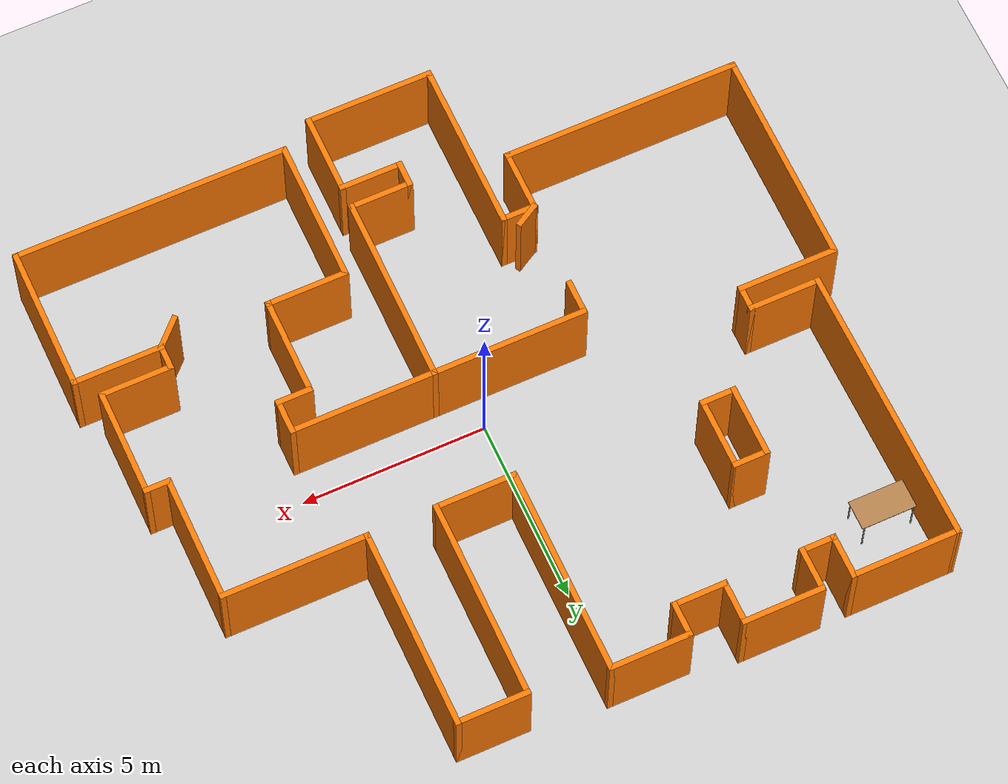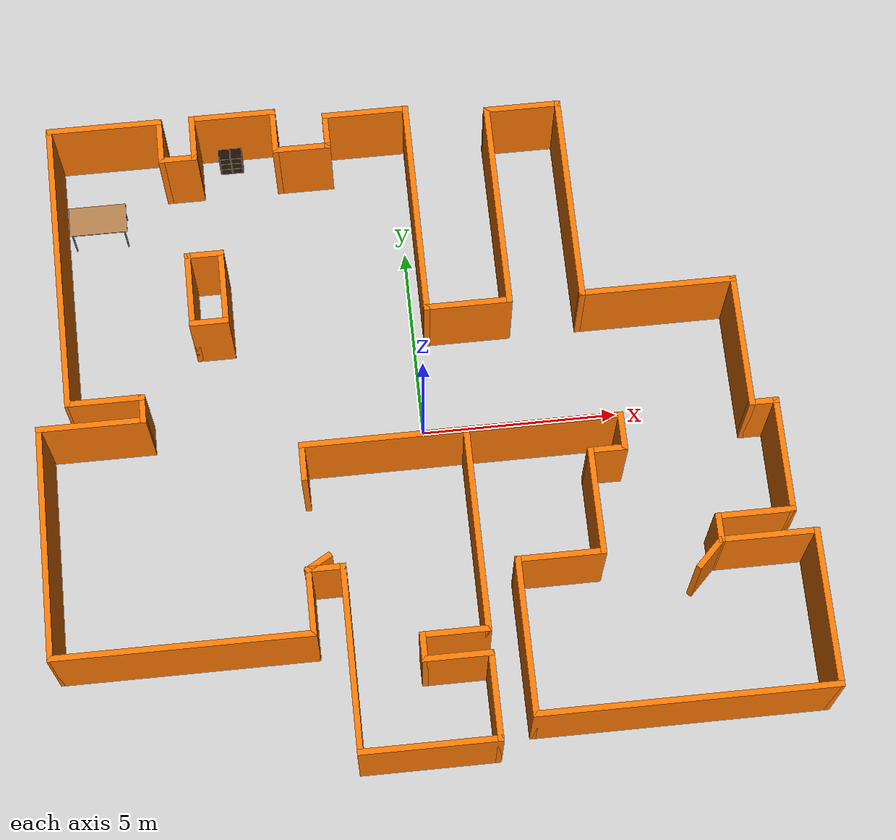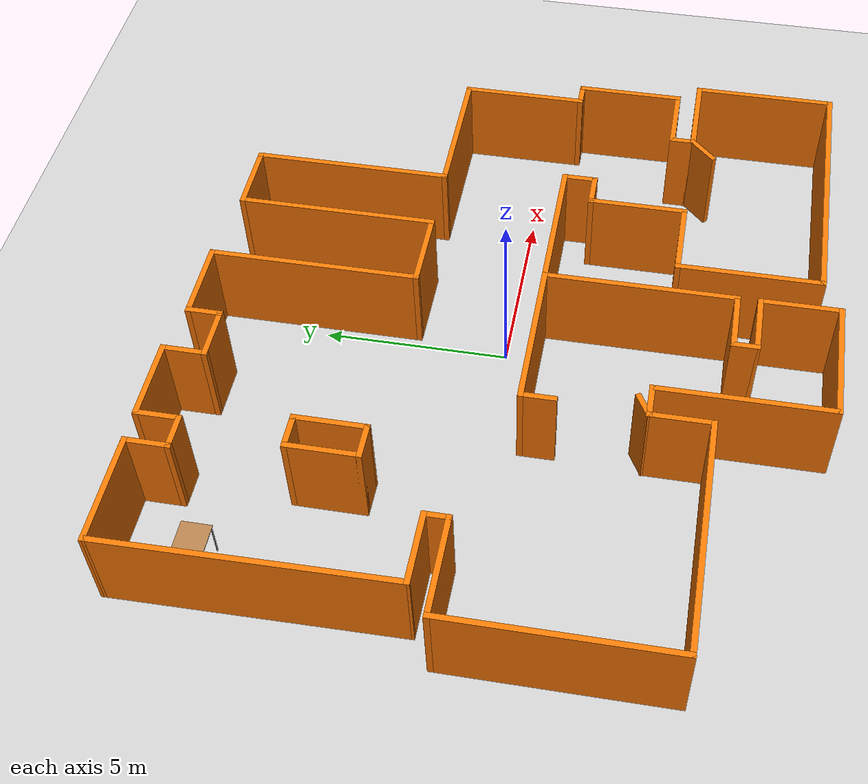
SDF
<sdf version="1.6">
 <world name="default">
  <model name="ground_plane">
   <static>1</static>
   <link name="link">
    <collision name="collision">
     <geometry><plane><normal>0 0 1</normal><size>100 100</size></plane></geometry>
     <surface>
      <contact><collide_bitmask>65535</collide_bitmask></contact>
      <friction><ode><mu>100</mu><mu2>50</mu2></ode></friction>
     </surface>
    </collision>
    <visual name="visual">
     <cast_shadows>0</cast_shadows>
     <geometry><plane><normal>0 0 1</normal><size>100 100</size></plane></geometry>
     <material>
      <script><uri>file://media/materials/scripts/gazebo.material</uri><name>Gazebo/Grey</name></script>
     </material>
    </visual>
   </link>
  </model>
  <model name="map_114">
   <pose>-0.172788 -0.179097 0 0 -0 0</pose>
   <link name="Wall_13">
    <collision name="Wall_13_Collision">
     <geometry><box><size>2 0.15 2.5</size></box></geometry>
     <pose>0 0 1.25 0 -0 0</pose>
    </collision>
    <visual name="Wall_13_Visual">
     <pose>0 0 1.25 0 -0 0</pose>
     <geometry><box><size>2 0.15 2.5</size></box></geometry>
     <material>
      <script><uri>file://media/materials/scripts/gazebo.material</uri><name>Gazebo/Grey</name></script>
      <ambient>0.996078 0.47451 0.0196078 1</ambient>
     </material>
     <meta><layer>0</layer></meta>
    </visual>
    <pose>-7.725 0.949507 0 0 -0 0</pose>
   </link>
   <link name="Wall_14">
    <collision name="Wall_14_Collision">
     <geometry><box><size>0.75 0.15 2.5</size></box></geometry>
     <pose>0 0 1.25 0 -0 0</pose>
    </collision>
    <visual name="Wall_14_Visual">
     <pose>0 0 1.25 0 -0 0</pose>
     <geometry><box><size>0.75 0.15 2.5</size></box></geometry>
     <material>
      <script><uri>file://media/materials/scripts/gazebo.material</uri><name>Gazebo/Grey</name></script>
      <ambient>0.996078 0.47451 0.0196078 1</ambient>
     </material>
     <meta><layer>0</layer></meta>
    </visual>
    <pose>-6.8 0.649507 0 0 -0 -1.5708</pose>
   </link>
   <link name="Wall_15">
    <collision name="Wall_15_Collision">
     <geometry><box><size>2.75 0.15 2.5</size></box></geometry>
     <pose>0 0 1.25 0 -0 0</pose>
    </collision>
    <visual name="Wall_15_Visual">
     <pose>0 0 1.25 0 -0 0</pose>
     <geometry><box><size>2.75 0.15 2.5</size></box></geometry>
     <material>
      <script><uri>file://media/materials/scripts/gazebo.material</uri><name>Gazebo/Grey</name></script>
      <ambient>0.996078 0.47451 0.0196078 1</ambient>
     </material>
     <meta><layer>0</layer></meta>
    </visual>
    <pose>-8.1 0.349507 0 0 -0 3.14159</pose>
   </link>
   <link name="Wall_16">
    <collision name="Wall_16_Collision">
     <geometry><box><size>6 0.15 2.5</size></box></geometry>
     <pose>0 0 1.25 0 -0 0</pose>
    </collision>
    <visual name="Wall_16_Visual">
     <pose>0 0 1.25 0 -0 0</pose>
     <geometry><box><size>6 0.15 2.5</size></box></geometry>
     <material>
      <script><uri>file://media/materials/scripts/gazebo.material</uri><name>Gazebo/Grey</name></script>
      <ambient>0.996078 0.47451 0.0196078 1</ambient>
     </material>
     <meta><layer>0</layer></meta>
    </visual>
    <pose>-9.4 -2.57549 0 0 -0 -1.5708</pose>
   </link>
   <link name="Wall_17">
    <collision name="Wall_17_Collision">
     <geometry><box><size>6.5 0.15 2.5</size></box></geometry>
     <pose>0 0 1.25 0 -0 0</pose>
    </collision>
    <visual name="Wall_17_Visual">
     <pose>0 0 1.25 0 -0 0</pose>
     <geometry><box><size>6.5 0.15 2.5</size></box></geometry>
     <material>
      <script><uri>file://media/materials/scripts/gazebo.material</uri><name>Gazebo/Grey</name></script>
      <ambient>0.996078 0.47451 0.0196078 1</ambient>
     </material>
     <meta><layer>0</layer></meta>
    </visual>
    <pose>-6.225 -5.50049 0 0 -0 0</pose>
   </link>
   <link name="Wall_21">
    <collision name="Wall_21_Collision">
     <geometry><box><size>3.5 0.15 2.5</size></box></geometry>
     <pose>0 0 1.25 0 -0 0</pose>
    </collision>
    <visual name="Wall_21_Visual">
     <pose>0 0 1.25 0 -0 0</pose>
     <geometry><box><size>3.5 0.15 2.5</size></box></geometry>
     <material>
      <script><uri>file://media/materials/scripts/gazebo.material</uri><name>Gazebo/Grey</name></script>
      <ambient>0.996078 0.47451 0.0196078 1</ambient>
     </material>
     <meta><layer>0</layer></meta>
    </visual>
    <pose>-0.525 -8.50049 0 0 -0 0</pose>
   </link>
   <link name="Wall_22">
    <collision name="Wall_22_Collision">
     <geometry><box><size>2.25 0.15 2.5</size></box></geometry>
     <pose>0 0 1.25 0 -0 0</pose>
    </collision>
    <visual name="Wall_22_Visual">
     <pose>0 0 1.25 0 -0 0</pose>
     <geometry><box><size>2.25 0.15 2.5</size></box></geometry>
     <material>
      <script><uri>file://media/materials/scripts/gazebo.material</uri><name>Gazebo/Grey</name></script>
      <ambient>0.996078 0.47451 0.0196078 1</ambient>
     </material>
     <meta><layer>0</layer></meta>
    </visual>
    <pose>1.15 -7.45049 0 0 -0 1.5708</pose>
   </link>
   <link name="Wall_23">
    <collision name="Wall_23_Collision">
     <geometry><box><size>1.75 0.15 2.5</size></box></geometry>
     <pose>0 0 1.25 0 -0 0</pose>
    </collision>
    <visual name="Wall_23_Visual">
     <pose>0 0 1.25 0 -0 0</pose>
     <geometry><box><size>1.75 0.15 2.5</size></box></geometry>
     <material>
      <script><uri>file://media/materials/scripts/gazebo.material</uri><name>Gazebo/Grey</name></script>
      <ambient>0.996078 0.47451 0.0196078 1</ambient>
     </material>
     <meta><layer>0</layer></meta>
    </visual>
    <pose>0.35 -6.40049 0 0 -0 3.14159</pose>
   </link>
   <link name="Wall_24">
    <collision name="Wall_24_Collision">
     <geometry><box><size>0.75 0.15 2.5</size></box></geometry>
     <pose>0 0 1.25 0 -0 0</pose>
    </collision>
    <visual name="Wall_24_Visual">
     <pose>0 0 1.25 0 -0 0</pose>
     <geometry><box><size>0.75 0.15 2.5</size></box></geometry>
     <material>
      <script><uri>file://media/materials/scripts/gazebo.material</uri><name>Gazebo/Grey</name></script>
      <ambient>0.996078 0.47451 0.0196078 1</ambient>
     </material>
     <meta><layer>0</layer></meta>
    </visual>
    <pose>-0.45 -6.10049 0 0 -0 1.5708</pose>
   </link>
   <link name="Wall_25">
    <collision name="Wall_25_Collision">
     <geometry><box><size>1.75 0.15 2.5</size></box></geometry>
     <pose>0 0 1.25 0 -0 0</pose>
    </collision>
    <visual name="Wall_25_Visual">
     <pose>0 0 1.25 0 -0 0</pose>
     <geometry><box><size>1.75 0.15 2.5</size></box></geometry>
     <material>
      <script><uri>file://media/materials/scripts/gazebo.material</uri><name>Gazebo/Grey</name></script>
      <ambient>0.996078 0.47451 0.0196078 1</ambient>
     </material>
     <meta><layer>0</layer></meta>
    </visual>
    <pose>0.35 -5.80049 0 0 -0 0</pose>
   </link>
   <link name="Wall_26">
    <collision name="Wall_26_Collision">
     <geometry><box><size>5.25 0.15 2.5</size></box></geometry>
     <pose>0 0 1.25 0 -0 0</pose>
    </collision>
    <visual name="Wall_26_Visual">
     <pose>0 0 1.25 0 -0 0</pose>
     <geometry><box><size>5.25 0.15 2.5</size></box></geometry>
     <material>
      <script><uri>file://media/materials/scripts/gazebo.material</uri><name>Gazebo/Grey</name></script>
      <ambient>0.996078 0.47451 0.0196078 1</ambient>
     </material>
     <meta><layer>0</layer></meta>
    </visual>
    <pose>1.15 -3.25049 0 0 -0 1.5708</pose>
   </link>
   <link name="Wall_27">
    <collision name="Wall_27_Collision">
     <geometry><box><size>4.25 0.15 2.5</size></box></geometry>
     <pose>0 0 1.25 0 -0 0</pose>
    </collision>
    <visual name="Wall_27_Visual">
     <pose>0 0 1.25 0 -0 0</pose>
     <geometry><box><size>4.25 0.15 2.5</size></box></geometry>
     <material>
      <script><uri>file://media/materials/scripts/gazebo.material</uri><name>Gazebo/Grey</name></script>
      <ambient>0.996078 0.47451 0.0196078 1</ambient>
     </material>
     <meta><layer>0</layer></meta>
    </visual>
    <pose>-0.9 -0.700493 0 0 -0 3.14159</pose>
   </link>
   <link name="Wall_28">
    <collision name="Wall_28_Collision">
     <geometry><box><size>1 0.15 2.5</size></box></geometry>
     <pose>0 0 1.25 0 -0 0</pose>
    </collision>
    <visual name="Wall_28_Visual">
     <pose>0 0 1.25 0 -0 0</pose>
     <geometry><box><size>1 0.15 2.5</size></box></geometry>
     <material>
      <script><uri>file://media/materials/scripts/gazebo.material</uri><name>Gazebo/Grey</name></script>
      <ambient>0.996078 0.47451 0.0196078 1</ambient>
     </material>
     <meta><layer>0</layer></meta>
    </visual>
    <pose>-2.95 -1.12549 0 0 -0 -1.5708</pose>
   </link>
   <link name="Wall_30">
    <collision name="Wall_30_Collision">
     <geometry><box><size>1.75 0.15 2.5</size></box></geometry>
     <pose>0 0 1.25 0 -0 0</pose>
    </collision>
    <visual name="Wall_30_Visual">
     <pose>0 0 1.25 0 -0 0</pose>
     <geometry><box><size>1.75 0.15 2.5</size></box></geometry>
     <material>
      <script><uri>file://media/materials/scripts/gazebo.material</uri><name>Gazebo/Grey</name></script>
      <ambient>0.996078 0.47451 0.0196078 1</ambient>
     </material>
     <meta><layer>0</layer></meta>
    </visual>
    <pose>-3.05 -4.70049 0 0 -0 1.5708</pose>
   </link>
   <link name="Wall_31">
    <collision name="Wall_31_Collision">
     <geometry><box><size>1 0.15 2.5</size></box></geometry>
     <pose>0 0 1.25 0 -0 0</pose>
    </collision>
    <visual name="Wall_31_Visual">
     <pose>0 0 1.25 0 -0 0</pose>
     <geometry><box><size>1 0.15 2.5</size></box></geometry>
     <material>
      <script><uri>file://media/materials/scripts/gazebo.material</uri><name>Gazebo/Grey</name></script>
      <ambient>0.996078 0.47451 0.0196078 1</ambient>
     </material>
     <meta><layer>0</layer></meta>
    </visual>
    <pose>-2.625 -3.90049 0 0 -0 0</pose>
   </link>
   <link name="Wall_33">
    <collision name="Wall_33_Collision">
     <geometry><box><size>4.75 0.15 2.5</size></box></geometry>
     <pose>0 0 1.25 0 -0 0</pose>
    </collision>
    <visual name="Wall_33_Visual">
     <pose>0 0 1.25 0 -0 0</pose>
     <geometry><box><size>4.75 0.15 2.5</size></box></geometry>
     <material>
      <script><uri>file://media/materials/scripts/gazebo.material</uri><name>Gazebo/Grey</name></script>
      <ambient>0.996078 0.47451 0.0196078 1</ambient>
     </material>
     <meta><layer>0</layer></meta>
    </visual>
    <pose>-2.2 -6.20049 0 0 -0 -1.5708</pose>
   </link>
   <link name="Wall_39">
    <collision name="Wall_39_Collision">
     <geometry><box><size>4 0.15 2.5</size></box></geometry>
     <pose>0 0 1.25 0 -0 0</pose>
    </collision>
    <visual name="Wall_39_Visual">
     <pose>0 0 1.25 0 -0 0</pose>
     <geometry><box><size>4 0.15 2.5</size></box></geometry>
     <material>
      <script><uri>file://media/materials/scripts/gazebo.material</uri><name>Gazebo/Grey</name></script>
      <ambient>0.996078 0.47451 0.0196078 1</ambient>
     </material>
     <meta><layer>0</layer></meta>
    </visual>
    <pose>3.075 -0.700493 0 0 -0 0</pose>
   </link>
   <link name="Wall_40">
    <collision name="Wall_40_Collision">
     <geometry><box><size>1 0.15 2.5</size></box></geometry>
     <pose>0 0 1.25 0 -0 0</pose>
    </collision>
    <visual name="Wall_40_Visual">
     <pose>0 0 1.25 0 -0 0</pose>
     <geometry><box><size>1 0.15 2.5</size></box></geometry>
     <material>
      <script><uri>file://media/materials/scripts/gazebo.material</uri><name>Gazebo/Grey</name></script>
      <ambient>0.996078 0.47451 0.0196078 1</ambient>
     </material>
     <meta><layer>0</layer></meta>
    </visual>
    <pose>5 -1.12549 0 0 -0 -1.5708</pose>
   </link>
   <link name="Wall_41">
    <collision name="Wall_41_Collision">
     <geometry><box><size>1 0.15 2.5</size></box></geometry>
     <pose>0 0 1.25 0 -0 0</pose>
    </collision>
    <visual name="Wall_41_Visual">
     <pose>0 0 1.25 0 -0 0</pose>
     <geometry><box><size>1 0.15 2.5</size></box></geometry>
     <material>
      <script><uri>file://media/materials/scripts/gazebo.material</uri><name>Gazebo/Grey</name></script>
      <ambient>0.996078 0.47451 0.0196078 1</ambient>
     </material>
     <meta><layer>0</layer></meta>
    </visual>
    <pose>4.575 -1.55049 0 0 -0 3.14159</pose>
   </link>
   <link name="Wall_42">
    <collision name="Wall_42_Collision">
     <geometry><box><size>2.75 0.15 2.5</size></box></geometry>
     <pose>0 0 1.25 0 -0 0</pose>
    </collision>
    <visual name="Wall_42_Visual">
     <pose>0 0 1.25 0 -0 0</pose>
     <geometry><box><size>2.75 0.15 2.5</size></box></geometry>
     <material>
      <script><uri>file://media/materials/scripts/gazebo.material</uri><name>Gazebo/Grey</name></script>
      <ambient>0.996078 0.47451 0.0196078 1</ambient>
     </material>
     <meta><layer>0</layer></meta>
    </visual>
    <pose>4.15 -2.85049 0 0 -0 -1.5708</pose>
   </link>
   <link name="Wall_43">
    <collision name="Wall_43_Collision">
     <geometry><box><size>2.25 0.15 2.5</size></box></geometry>
     <pose>0 0 1.25 0 -0 0</pose>
    </collision>
    <visual name="Wall_43_Visual">
     <pose>0 0 1.25 0 -0 0</pose>
     <geometry><box><size>2.25 0.15 2.5</size></box></geometry>
     <material>
      <script><uri>file://media/materials/scripts/gazebo.material</uri><name>Gazebo/Grey</name></script>
      <ambient>0.996078 0.47451 0.0196078 1</ambient>
     </material>
     <meta><layer>0</layer></meta>
    </visual>
    <pose>3.1 -4.15049 0 0 -0 3.14159</pose>
   </link>
   <link name="Wall_44">
    <collision name="Wall_44_Collision">
     <geometry><box><size>4 0.15 2.5</size></box></geometry>
     <pose>0 0 1.25 0 -0 0</pose>
    </collision>
    <visual name="Wall_44_Visual">
     <pose>0 0 1.25 0 -0 0</pose>
     <geometry><box><size>4 0.15 2.5</size></box></geometry>
     <material>
      <script><uri>file://media/materials/scripts/gazebo.material</uri><name>Gazebo/Grey</name></script>
      <ambient>0.996078 0.47451 0.0196078 1</ambient>
     </material>
     <meta><layer>0</layer></meta>
    </visual>
    <pose>2.05 -6.07549 0 0 -0 -1.5708</pose>
   </link>
   <link name="Wall_45">
    <collision name="Wall_45_Collision">
     <geometry><box><size>7.5 0.15 2.5</size></box></geometry>
     <pose>0 0 1.25 0 -0 0</pose>
    </collision>
    <visual name="Wall_45_Visual">
     <pose>0 0 1.25 0 -0 0</pose>
     <geometry><box><size>7.5 0.15 2.5</size></box></geometry>
     <material>
      <script><uri>file://media/materials/scripts/gazebo.material</uri><name>Gazebo/Grey</name></script>
      <ambient>0.996078 0.47451 0.0196078 1</ambient>
     </material>
     <meta><layer>0</layer></meta>
    </visual>
    <pose>5.725 -8.00049 0 0 -0 0</pose>
   </link>
   <link name="Wall_46">
    <collision name="Wall_46_Collision">
     <geometry><box><size>4 0.15 2.5</size></box></geometry>
     <pose>0 0 1.25 0 -0 0</pose>
    </collision>
    <visual name="Wall_46_Visual">
     <pose>0 0 1.25 0 -0 0</pose>
     <geometry><box><size>4 0.15 2.5</size></box></geometry>
     <material>
      <script><uri>file://media/materials/scripts/gazebo.material</uri><name>Gazebo/Grey</name></script>
      <ambient>0.996078 0.47451 0.0196078 1</ambient>
     </material>
     <meta><layer>0</layer></meta>
    </visual>
    <pose>9.4 -6.07549 0 0 -0 1.5708</pose>
   </link>
   <link name="Wall_47">
    <collision name="Wall_47_Collision">
     <geometry><box><size>2.5 0.15 2.5</size></box></geometry>
     <pose>0 0 1.25 0 -0 0</pose>
    </collision>
    <visual name="Wall_47_Visual">
     <pose>0 0 1.25 0 -0 0</pose>
     <geometry><box><size>2.5 0.15 2.5</size></box></geometry>
     <material>
      <script><uri>file://media/materials/scripts/gazebo.material</uri><name>Gazebo/Grey</name></script>
      <ambient>0.996078 0.47451 0.0196078 1</ambient>
     </material>
     <meta><layer>0</layer></meta>
    </visual>
    <pose>8.225 -4.15049 0 0 -0 3.14159</pose>
   </link>
   <link name="Wall_48">
    <collision name="Wall_48_Collision">
     <geometry><box><size>0.75 0.15 2.5</size></box></geometry>
     <pose>0 0 1.25 0 -0 0</pose>
    </collision>
    <visual name="Wall_48_Visual">
     <pose>0 0 1.25 0 -0 0</pose>
     <geometry><box><size>0.75 0.15 2.5</size></box></geometry>
     <material>
      <script><uri>file://media/materials/scripts/gazebo.material</uri><name>Gazebo/Grey</name></script>
      <ambient>0.996078 0.47451 0.0196078 1</ambient>
     </material>
     <meta><layer>0</layer></meta>
    </visual>
    <pose>7.05 -3.85049 0 0 -0 1.5708</pose>
   </link>
   <link name="Wall_49">
    <collision name="Wall_49_Collision">
     <geometry><box><size>2 0.15 2.5</size></box></geometry>
     <pose>0 0 1.25 0 -0 0</pose>
    </collision>
    <visual name="Wall_49_Visual">
     <pose>0 0 1.25 0 -0 0</pose>
     <geometry><box><size>2 0.15 2.5</size></box></geometry>
     <material>
      <script><uri>file://media/materials/scripts/gazebo.material</uri><name>Gazebo/Grey</name></script>
      <ambient>0.996078 0.47451 0.0196078 1</ambient>
     </material>
     <meta><layer>0</layer></meta>
    </visual>
    <pose>7.975 -3.55049 0 0 -0 0</pose>
   </link>
   <link name="Wall_50">
    <collision name="Wall_50_Collision">
     <geometry><box><size>3 0.15 2.5</size></box></geometry>
     <pose>0 0 1.25 0 -0 0</pose>
    </collision>
    <visual name="Wall_50_Visual">
     <pose>0 0 1.25 0 -0 0</pose>
     <geometry><box><size>3 0.15 2.5</size></box></geometry>
     <material>
      <script><uri>file://media/materials/scripts/gazebo.material</uri><name>Gazebo/Grey</name></script>
      <ambient>0.996078 0.47451 0.0196078 1</ambient>
     </material>
     <meta><layer>0</layer></meta>
    </visual>
    <pose>8.9 -2.12549 0 0 -0 1.5708</pose>
   </link>
   <link name="Wall_51">
    <collision name="Wall_51_Collision">
     <geometry><box><size>0.75 0.15 2.5</size></box></geometry>
     <pose>0 0 1.25 0 -0 0</pose>
    </collision>
    <visual name="Wall_51_Visual">
     <pose>0 0 1.25 0 -0 0</pose>
     <geometry><box><size>0.75 0.15 2.5</size></box></geometry>
     <material>
      <script><uri>file://media/materials/scripts/gazebo.material</uri><name>Gazebo/Grey</name></script>
      <ambient>0.996078 0.47451 0.0196078 1</ambient>
     </material>
     <meta><layer>0</layer></meta>
    </visual>
    <pose>8.6 -0.700493 0 0 -0 3.14159</pose>
   </link>
   <link name="Wall_57">
    <collision name="Wall_57_Collision">
     <geometry><box><size>3.5 0.15 2.5</size></box></geometry>
     <pose>0 0 1.25 0 -0 0</pose>
    </collision>
    <visual name="Wall_57_Visual">
     <pose>0 0 1.25 0 -0 0</pose>
     <geometry><box><size>3.5 0.15 2.5</size></box></geometry>
     <material>
      <script><uri>file://media/materials/scripts/gazebo.material</uri><name>Gazebo/Grey</name></script>
      <ambient>0.996078 0.47451 0.0196078 1</ambient>
     </material>
     <meta><layer>0</layer></meta>
    </visual>
    <pose>8.3 0.974507 0 0 -0 1.5708</pose>
   </link>
   <link name="Wall_58">
    <collision name="Wall_58_Collision">
     <geometry><box><size>4 0.15 2.5</size></box></geometry>
     <pose>0 0 1.25 0 -0 0</pose>
    </collision>
    <visual name="Wall_58_Visual">
     <pose>0 0 1.25 0 -0 0</pose>
     <geometry><box><size>4 0.15 2.5</size></box></geometry>
     <material>
      <script><uri>file://media/materials/scripts/gazebo.material</uri><name>Gazebo/Grey</name></script>
      <ambient>0.996078 0.47451 0.0196078 1</ambient>
     </material>
     <meta><layer>0</layer></meta>
    </visual>
    <pose>6.375 2.64951 0 0 -0 3.14159</pose>
   </link>
   <link name="Wall_59">
    <collision name="Wall_59_Collision">
     <geometry><box><size>5.5 0.15 2.5</size></box></geometry>
     <pose>0 0 1.25 0 -0 0</pose>
    </collision>
    <visual name="Wall_59_Visual">
     <pose>0 0 1.25 0 -0 0</pose>
     <geometry><box><size>5.5 0.15 2.5</size></box></geometry>
     <material>
      <script><uri>file://media/materials/scripts/gazebo.material</uri><name>Gazebo/Grey</name></script>
      <ambient>0.996078 0.47451 0.0196078 1</ambient>
     </material>
     <meta><layer>0</layer></meta>
    </visual>
    <pose>4.45 5.32451 0 0 -0 1.5708</pose>
   </link>
   <link name="Wall_60">
    <collision name="Wall_60_Collision">
     <geometry><box><size>2 0.15 2.5</size></box></geometry>
     <pose>0 0 1.25 0 -0 0</pose>
    </collision>
    <visual name="Wall_60_Visual">
     <pose>0 0 1.25 0 -0 0</pose>
     <geometry><box><size>2 0.15 2.5</size></box></geometry>
     <material>
      <script><uri>file://media/materials/scripts/gazebo.material</uri><name>Gazebo/Grey</name></script>
      <ambient>0.996078 0.47451 0.0196078 1</ambient>
     </material>
     <meta><layer>0</layer></meta>
    </visual>
    <pose>3.525 7.99951 0 0 -0 3.14159</pose>
   </link>
   <link name="Wall_61">
    <collision name="Wall_61_Collision">
     <geometry><box><size>5.5 0.15 2.5</size></box></geometry>
     <pose>0 0 1.25 0 -0 0</pose>
    </collision>
    <visual name="Wall_61_Visual">
     <pose>0 0 1.25 0 -0 0</pose>
     <geometry><box><size>5.5 0.15 2.5</size></box></geometry>
     <material>
      <script><uri>file://media/materials/scripts/gazebo.material</uri><name>Gazebo/Grey</name></script>
      <ambient>0.996078 0.47451 0.0196078 1</ambient>
     </material>
     <meta><layer>0</layer></meta>
    </visual>
    <pose>2.6 5.32451 0 0 -0 -1.5708</pose>
   </link>
   <link name="Wall_62">
    <collision name="Wall_62_Collision">
     <geometry><box><size>2.25 0.15 2.5</size></box></geometry>
     <pose>0 0 1.25 0 -0 0</pose>
    </collision>
    <visual name="Wall_62_Visual">
     <pose>0 0 1.25 0 -0 0</pose>
     <geometry><box><size>2.25 0.15 2.5</size></box></geometry>
     <material>
      <script><uri>file://media/materials/scripts/gazebo.material</uri><name>Gazebo/Grey</name></script>
      <ambient>0.996078 0.47451 0.0196078 1</ambient>
     </material>
     <meta><layer>0</layer></meta>
    </visual>
    <pose>1.55 2.64951 0 0 -0 3.14159</pose>
   </link>
   <link name="Wall_63">
    <collision name="Wall_63_Collision">
     <geometry><box><size>5.75 0.15 2.5</size></box></geometry>
     <pose>0 0 1.25 0 -0 0</pose>
    </collision>
    <visual name="Wall_63_Visual">
     <pose>0 0 1.25 0 -0 0</pose>
     <geometry><box><size>5.75 0.15 2.5</size></box></geometry>
     <material>
      <script><uri>file://media/materials/scripts/gazebo.material</uri><name>Gazebo/Grey</name></script>
      <ambient>0.996078 0.47451 0.0196078 1</ambient>
     </material>
     <meta><layer>0</layer></meta>
    </visual>
    <pose>0.5 5.44951 0 0 -0 1.5708</pose>
   </link>
   <link name="Wall_64">
    <collision name="Wall_64_Collision">
     <geometry><box><size>2.25 0.15 2.5</size></box></geometry>
     <pose>0 0 1.25 0 -0 0</pose>
    </collision>
    <visual name="Wall_64_Visual">
     <pose>0 0 1.25 0 -0 0</pose>
     <geometry><box><size>2.25 0.15 2.5</size></box></geometry>
     <material>
      <script><uri>file://media/materials/scripts/gazebo.material</uri><name>Gazebo/Grey</name></script>
      <ambient>0.996078 0.47451 0.0196078 1</ambient>
     </material>
     <meta><layer>0</layer></meta>
    </visual>
    <pose>-0.55 8.24951 0 0 -0 3.14159</pose>
   </link>
   <link name="Wall_65">
    <collision name="Wall_65_Collision">
     <geometry><box><size>1 0.15 2.5</size></box></geometry>
     <pose>0 0 1.25 0 -0 0</pose>
    </collision>
    <visual name="Wall_65_Visual">
     <pose>0 0 1.25 0 -0 0</pose>
     <geometry><box><size>1 0.15 2.5</size></box></geometry>
     <material>
      <script><uri>file://media/materials/scripts/gazebo.material</uri><name>Gazebo/Grey</name></script>
      <ambient>0.996078 0.47451 0.0196078 1</ambient>
     </material>
     <meta><layer>0</layer></meta>
    </visual>
    <pose>-1.6 7.82451 0 0 -0 -1.5708</pose>
   </link>
   <link name="Wall_66">
    <collision name="Wall_66_Collision">
     <geometry><box><size>1.5 0.15 2.5</size></box></geometry>
     <pose>0 0 1.25 0 -0 0</pose>
    </collision>
    <visual name="Wall_66_Visual">
     <pose>0 0 1.25 0 -0 0</pose>
     <geometry><box><size>1.5 0.15 2.5</size></box></geometry>
     <material>
      <script><uri>file://media/materials/scripts/gazebo.material</uri><name>Gazebo/Grey</name></script>
      <ambient>0.996078 0.47451 0.0196078 1</ambient>
     </material>
     <meta><layer>0</layer></meta>
    </visual>
    <pose>-2.275 7.39951 0 0 -0 3.14159</pose>
   </link>
   <link name="Wall_67">
    <collision name="Wall_67_Collision">
     <geometry><box><size>1.25 0.15 2.5</size></box></geometry>
     <pose>0 0 1.25 0 -0 0</pose>
    </collision>
    <visual name="Wall_67_Visual">
     <pose>0 0 1.25 0 -0 0</pose>
     <geometry><box><size>1.25 0.15 2.5</size></box></geometry>
     <material>
      <script><uri>file://media/materials/scripts/gazebo.material</uri><name>Gazebo/Grey</name></script>
      <ambient>0.996078 0.47451 0.0196078 1</ambient>
     </material>
     <meta><layer>0</layer></meta>
    </visual>
    <pose>-2.95 7.94951 0 0 -0 1.5708</pose>
   </link>
   <link name="Wall_68">
    <collision name="Wall_68_Collision">
     <geometry><box><size>2.25 0.15 2.5</size></box></geometry>
     <pose>0 0 1.25 0 -0 0</pose>
    </collision>
    <visual name="Wall_68_Visual">
     <pose>0 0 1.25 0 -0 0</pose>
     <geometry><box><size>2.25 0.15 2.5</size></box></geometry>
     <material>
      <script><uri>file://media/materials/scripts/gazebo.material</uri><name>Gazebo/Grey</name></script>
      <ambient>0.996078 0.47451 0.0196078 1</ambient>
     </material>
     <meta><layer>0</layer></meta>
    </visual>
    <pose>-4 8.49951 0 0 -0 3.14159</pose>
   </link>
   <link name="Wall_69">
    <collision name="Wall_69_Collision">
     <geometry><box><size>1.25 0.15 2.5</size></box></geometry>
     <pose>0 0 1.25 0 -0 0</pose>
    </collision>
    <visual name="Wall_69_Visual">
     <pose>0 0 1.25 0 -0 0</pose>
     <geometry><box><size>1.25 0.15 2.5</size></box></geometry>
     <material>
      <script><uri>file://media/materials/scripts/gazebo.material</uri><name>Gazebo/Grey</name></script>
      <ambient>0.996078 0.47451 0.0196078 1</ambient>
     </material>
     <meta><layer>0</layer></meta>
    </visual>
    <pose>-5.05 7.94951 0 0 -0 -1.5708</pose>
   </link>
   <link name="Wall_70">
    <collision name="Wall_70_Collision">
     <geometry><box><size>1 0.15 2.5</size></box></geometry>
     <pose>0 0 1.25 0 -0 0</pose>
    </collision>
    <visual name="Wall_70_Visual">
     <pose>0 0 1.25 0 -0 0</pose>
     <geometry><box><size>1 0.15 2.5</size></box></geometry>
     <material>
      <script><uri>file://media/materials/scripts/gazebo.material</uri><name>Gazebo/Grey</name></script>
      <ambient>0.996078 0.47451 0.0196078 1</ambient>
     </material>
     <meta><layer>0</layer></meta>
    </visual>
    <pose>-5.475 7.39951 0 0 -0 3.14159</pose>
   </link>
   <link name="Wall_71">
    <collision name="Wall_71_Collision">
     <geometry><box><size>1.25 0.15 2.5</size></box></geometry>
     <pose>0 0 1.25 0 -0 0</pose>
    </collision>
    <visual name="Wall_71_Visual">
     <pose>0 0 1.25 0 -0 0</pose>
     <geometry><box><size>1.25 0.15 2.5</size></box></geometry>
     <material>
      <script><uri>file://media/materials/scripts/gazebo.material</uri><name>Gazebo/Grey</name></script>
      <ambient>0.996078 0.47451 0.0196078 1</ambient>
     </material>
     <meta><layer>0</layer></meta>
    </visual>
    <pose>-5.9 7.94951 0 0 -0 1.5708</pose>
   </link>
   <link name="Wall_72">
    <collision name="Wall_72_Collision">
     <geometry><box><size>3 0.15 2.5</size></box></geometry>
     <pose>0 0 1.25 0 -0 0</pose>
    </collision>
    <visual name="Wall_72_Visual">
     <pose>0 0 1.25 0 -0 0</pose>
     <geometry><box><size>3 0.15 2.5</size></box></geometry>
     <material>
      <script><uri>file://media/materials/scripts/gazebo.material</uri><name>Gazebo/Grey</name></script>
      <ambient>0.996078 0.47451 0.0196078 1</ambient>
     </material>
     <meta><layer>0</layer></meta>
    </visual>
    <pose>-7.325 8.49951 0 0 -0 3.14159</pose>
   </link>
   <link name="Wall_75">
    <collision name="Wall_75_Collision">
     <geometry><box><size>7.70066 0.15 2.5</size></box></geometry>
     <pose>0 0 1.25 0 -0 0</pose>
    </collision>
    <visual name="Wall_75_Visual">
     <pose>0 0 1.25 0 -0 0</pose>
     <geometry><box><size>7.70066 0.15 2.5</size></box></geometry>
     <material>
      <script><uri>file://media/materials/scripts/gazebo.material</uri><name>Gazebo/Grey</name></script>
      <ambient>0.996078 0.47451 0.0196078 1</ambient>
     </material>
     <meta><layer>0</layer></meta>
    </visual>
    <pose>-8.7 4.72451 0 0 -0 -1.55755</pose>
   </link>
   <link name="Wall_77">
    <collision name="Wall_77_Collision">
     <geometry><box><size>0.75 0.15 2.5</size></box></geometry>
     <pose>0 0 1.25 0 -0 0</pose>
    </collision>
    <visual name="Wall_77_Visual">
     <pose>0 0 1.25 0 -0 0</pose>
     <geometry><box><size>0.75 0.15 2.5</size></box></geometry>
     <material>
      <script><uri>file://media/materials/scripts/gazebo.material</uri><name>Gazebo/Grey</name></script>
      <ambient>0.996078 0.47451 0.0196078 1</ambient>
     </material>
     <meta><layer>0</layer></meta>
    </visual>
    <pose>-2.79019 -3.75049 0 0 -0 0.523599</pose>
   </link>
   <link name="Wall_79">
    <collision name="Wall_79_Collision">
     <geometry><box><size>1 0.15 2.5</size></box></geometry>
     <pose>0 0 1.25 0 -0 0</pose>
    </collision>
    <visual name="Wall_79_Visual">
     <pose>0 0 1.25 0 -0 0</pose>
     <geometry><box><size>1 0.15 2.5</size></box></geometry>
     <material>
      <script><uri>file://media/materials/scripts/gazebo.material</uri><name>Gazebo/Grey</name></script>
      <ambient>0.996078 0.47451 0.0196078 1</ambient>
     </material>
     <meta><layer>0</layer></meta>
    </visual>
    <pose>6.74948 -4.45101 0 0 -0 -2.35619</pose>
   </link>
   <link name="Wall_81">
    <collision name="Wall_81_Collision">
     <geometry><box><size>2 0.15 2.5</size></box></geometry>
     <pose>0 0 1.25 0 -0 0</pose>
    </collision>
    <visual name="Wall_81_Visual">
     <pose>0 0 1.25 0 -0 0</pose>
     <geometry><box><size>2 0.15 2.5</size></box></geometry>
     <material>
      <script><uri>file://media/materials/scripts/gazebo.material</uri><name>Gazebo/Grey</name></script>
      <ambient>0.996078 0.47451 0.0196078 1</ambient>
     </material>
     <meta><layer>0</layer></meta>
    </visual>
    <pose>-5.4155 3.72946 0 0 -0 -1.5708</pose>
   </link>
   <link name="Wall_82">
    <collision name="Wall_82_Collision">
     <geometry><box><size>1 0.15 2.5</size></box></geometry>
     <pose>0 0 1.25 0 -0 0</pose>
    </collision>
    <visual name="Wall_82_Visual">
     <pose>0 0 1.25 0 -0 0</pose>
     <geometry><box><size>1 0.15 2.5</size></box></geometry>
     <material>
      <script><uri>file://media/materials/scripts/gazebo.material</uri><name>Gazebo/Grey</name></script>
      <ambient>0.996078 0.47451 0.0196078 1</ambient>
     </material>
     <meta><layer>0</layer></meta>
    </visual>
    <pose>-4.9905 2.80446 0 0 -0 0</pose>
   </link>
   <link name="Wall_83">
    <collision name="Wall_83_Collision">
     <geometry><box><size>2 0.15 2.5</size></box></geometry>
     <pose>0 0 1.25 0 -0 0</pose>
    </collision>
    <visual name="Wall_83_Visual">
     <pose>0 0 1.25 0 -0 0</pose>
     <geometry><box><size>2 0.15 2.5</size></box></geometry>
     <material>
      <script><uri>file://media/materials/scripts/gazebo.material</uri><name>Gazebo/Grey</name></script>
      <ambient>0.996078 0.47451 0.0196078 1</ambient>
     </material>
     <meta><layer>0</layer></meta>
    </visual>
    <pose>-4.5655 3.72946 0 0 -0 1.5708</pose>
   </link>
   <link name="Wall_84">
    <collision name="Wall_84_Collision">
     <geometry><box><size>1 0.15 2.5</size></box></geometry>
     <pose>0 0 1.25 0 -0 0</pose>
    </collision>
    <visual name="Wall_84_Visual">
     <pose>0 0 1.25 0 -0 0</pose>
     <geometry><box><size>1 0.15 2.5</size></box></geometry>
     <material>
      <script><uri>file://media/materials/scripts/gazebo.material</uri><name>Gazebo/Grey</name></script>
      <ambient>0.996078 0.47451 0.0196078 1</ambient>
     </material>
     <meta><layer>0</layer></meta>
    </visual>
    <pose>-4.9905 4.65446 0 0 -0 3.14159</pose>
   </link>
   <static>1</static>
  </model>
  <model name="table">
   <static>1</static>
   <link name="link">
    <collision name="surface">
     <pose>0 0 1 0 -0 0</pose>
     <geometry><box><size>1.5 0.8 0.03</size></box></geometry>
     <surface><friction><ode><mu>0.6</mu><mu2>0.6</mu2></ode></friction></surface>
    </collision>
    <visual name="visual1">
     <pose>0 0 1 0 -0 0</pose>
     <geometry><box><size>1.5 0.8 0.03</size></box></geometry>
     <material>
      <script><uri>file://media/materials/scripts/gazebo.material</uri><name>Gazebo/Wood</name></script>
     </material>
    </visual>
    <collision name="front_left_leg">
     <pose>0.68 0.38 0.5 0 -0 0</pose>
     <geometry><cylinder><radius>0.02</radius><length>1</length></cylinder></geometry>
    </collision>
    <visual name="front_left_leg">
     <pose>0.68 0.38 0.5 0 -0 0</pose>
     <geometry><cylinder><radius>0.02</radius><length>1</length></cylinder></geometry>
     <material>
      <script><uri>file://media/materials/scripts/gazebo.material</uri><name>Gazebo/Grey</name></script>
     </material>
    </visual>
    <collision name="front_right_leg">
     <pose>0.68 -0.38 0.5 0 -0 0</pose>
     <geometry><cylinder><radius>0.02</radius><length>1</length></cylinder></geometry>
    </collision>
    <visual name="front_right_leg">
     <pose>0.68 -0.38 0.5 0 -0 0</pose>
     <geometry><cylinder><radius>0.02</radius><length>1</length></cylinder></geometry>
     <material>
      <script><uri>file://media/materials/scripts/gazebo.material</uri><name>Gazebo/Grey</name></script>
     </material>
    </visual>
    <collision name="back_right_leg">
     <pose>-0.68 -0.38 0.5 0 -0 0</pose>
     <geometry><cylinder><radius>0.02</radius><length>1</length></cylinder></geometry>
    </collision>
    <visual name="back_right_leg">
     <pose>-0.68 -0.38 0.5 0 -0 0</pose>
     <geometry><cylinder><radius>0.02</radius><length>1</length></cylinder></geometry>
     <material>
      <script><uri>file://media/materials/scripts/gazebo.material</uri><name>Gazebo/Grey</name></script>
     </material>
    </visual>
    <collision name="back_left_leg">
     <pose>-0.68 0.38 0.5 0 -0 0</pose>
     <geometry><cylinder><radius>0.02</radius><length>1</length></cylinder></geometry>
    </collision>
    <visual name="back_left_leg">
     <pose>-0.68 0.38 0.5 0 -0 0</pose>
     <geometry><cylinder><radius>0.02</radius><length>1</length></cylinder></geometry>
     <material>
      <script><uri>file://media/materials/scripts/gazebo.material</uri><name>Gazebo/Grey</name></script>
     </material>
    </visual>
   </link>
   <pose>-7.94787 6.39244 0 0 -0 0</pose>
  </model>
  <model name="6_Cube_StorageE_0">
   <link name="Wall_0">
    <pose>0 0 0.01 0 -0 0</pose>
    <inertial>
     <mass>1.6201</mass>
     <inertia><ixx>0.0119</ixx><iyy>0.0631</iyy><izz>0.0513</izz><ixy>0</ixy><ixz>0</ixz><iyz>0</iyz></inertia>
    </inertial>
    <collision name="Wall_0_Collision"><geometry><box><size>0.616 0.296 0.02</size></box></geometry></collision>
    <visual name="Wall_0_Visual">
     <geometry><box><size>0.616 0.296 0.02</size></box></geometry>
     <material>
      <script><uri>file://media/materials/scripts/gazebo.material</uri><name>Gazebo/Grey</name></script>
      <ambient>0.105882 0.0509804 0 1</ambient>
     </material>
    </visual>
   </link>
   <joint name="0_2" type="fixed">
    <pose>-0.308 0 0 0 -0 0</pose>
    <parent>Wall_2</parent>
    <child>Wall_0</child>
    <axis>
     <xyz>1 0 0</xyz>
     <use_parent_model_frame>0</use_parent_model_frame>
     <limit><lower>-1e+16</lower><upper>1e+16</upper></limit>
    </axis>
   </joint>
   <joint name="0_12" type="fixed">
    <parent>Wall_12</parent>
    <child>Wall_0</child>
    <axis>
     <xyz>0 0 1</xyz>
     <use_parent_model_frame>0</use_parent_model_frame>
     <limit><lower>-1e+16</lower><upper>1e+16</upper></limit>
    </axis>
   </joint>
   <joint name="0_4" type="fixed">
    <pose>0.308 0 0 0 -0 0</pose>
    <parent>Wall_4</parent>
    <child>Wall_0</child>
    <axis>
     <xyz>1 0 0</xyz>
     <use_parent_model_frame>0</use_parent_model_frame>
     <limit><lower>-1e+16</lower><upper>1e+16</upper></limit>
    </axis>
   </joint>
   <link name="Wall_10">
    <pose>0 0 0.61 0 -0 0</pose>
    <inertial>
     <mass>1.6201</mass>
     <inertia><ixx>0.0119</ixx><iyy>0.0631</iyy><izz>0.0513</izz><ixy>0</ixy><ixz>0</ixz><iyz>0</iyz></inertia>
    </inertial>
    <collision name="Wall_10_Collision"><geometry><box><size>0.616 0.296 0.02</size></box></geometry></collision>
    <visual name="Wall_10_Visual">
     <geometry><box><size>0.616 0.296 0.02</size></box></geometry>
     <material>
      <script><uri>file://media/materials/scripts/gazebo.material</uri><name>Gazebo/Grey</name></script>
      <ambient>0.105882 0.0509804 0 1</ambient>
     </material>
    </visual>
   </link>
   <joint name="10_2" type="fixed">
    <pose>-0.308 0 0 0 -0 0</pose>
    <parent>Wall_2</parent>
    <child>Wall_10</child>
    <axis>
     <xyz>1 0 0</xyz>
     <use_parent_model_frame>0</use_parent_model_frame>
     <limit><lower>-1e+16</lower><upper>1e+16</upper></limit>
    </axis>
   </joint>
   <joint name="10_12" type="fixed">
    <parent>Wall_12</parent>
    <child>Wall_10</child>
    <axis>
     <xyz>0 0 1</xyz>
     <use_parent_model_frame>0</use_parent_model_frame>
     <limit><lower>-1e+16</lower><upper>1e+16</upper></limit>
    </axis>
   </joint>
   <joint name="10_4" type="fixed">
    <pose>0.308 0 0 0 -0 0</pose>
    <parent>Wall_4</parent>
    <child>Wall_10</child>
    <axis>
     <xyz>1 0 0</xyz>
     <use_parent_model_frame>0</use_parent_model_frame>
     <limit><lower>-1e+16</lower><upper>1e+16</upper></limit>
    </axis>
   </joint>
   <link name="Wall_12">
    <pose>0 0 0.4575 0 -0 0</pose>
    <inertial>
     <mass>2.4065</mass>
     <inertia><ixx>0.0177</ixx><iyy>0.1855</iyy><izz>0.168</izz><ixy>0</ixy><ixz>0</ixz><iyz>0</iyz></inertia>
    </inertial>
    <collision name="Wall_12_Collision"><geometry><box><size>0.02 0.296 0.915</size></box></geometry></collision>
    <visual name="Wall_12_Visual">
     <geometry><box><size>0.02 0.296 0.915</size></box></geometry>
     <material>
      <script><uri>file://media/materials/scripts/gazebo.material</uri><name>Gazebo/Grey</name></script>
      <ambient>0.105882 0.0509804 0 1</ambient>
     </material>
    </visual>
   </link>
   <link name="Wall_2">
    <pose>-0.298 0 0.4575 0 -0 0</pose>
    <inertial>
     <mass>2.4065</mass>
     <inertia><ixx>0.0177</ixx><iyy>0.1855</iyy><izz>0.168</izz><ixy>0</ixy><ixz>0</ixz><iyz>0</iyz></inertia>
    </inertial>
    <collision name="Wall_2_Collision"><geometry><box><size>0.02 0.296 0.915</size></box></geometry></collision>
    <visual name="Wall_2_Visual">
     <geometry><box><size>0.02 0.296 0.915</size></box></geometry>
     <material>
      <script><uri>file://media/materials/scripts/gazebo.material</uri><name>Gazebo/Grey</name></script>
      <ambient>0.105882 0.0509804 0 1</ambient>
     </material>
    </visual>
   </link>
   <link name="Wall_4">
    <pose>0.298 0 0.4575 0 -0 0</pose>
    <inertial>
     <mass>2.4065</mass>
     <inertia><ixx>0.0177</ixx><iyy>0.1855</iyy><izz>0.168</izz><ixy>0</ixy><ixz>0</ixz><iyz>0</iyz></inertia>
    </inertial>
    <collision name="Wall_4_Collision"><geometry><box><size>0.02 0.296 0.915</size></box></geometry></collision>
    <visual name="Wall_4_Visual">
     <geometry><box><size>0.02 0.296 0.915</size></box></geometry>
     <material>
      <script><uri>file://media/materials/scripts/gazebo.material</uri><name>Gazebo/Grey</name></script>
      <ambient>0.105882 0.0509804 0 1</ambient>
     </material>
    </visual>
   </link>
   <link name="Wall_6">
    <pose>0 0 0.905 0 -0 0</pose>
    <inertial>
     <mass>1.6201</mass>
     <inertia><ixx>0.0119</ixx><iyy>0.0631</iyy><izz>0.0513</izz><ixy>0</ixy><ixz>0</ixz><iyz>0</iyz></inertia>
    </inertial>
    <collision name="Wall_6_Collision"><geometry><box><size>0.616 0.296 0.02</size></box></geometry></collision>
    <visual name="Wall_6_Visual">
     <geometry><box><size>0.616 0.296 0.02</size></box></geometry>
     <material>
      <script><uri>file://media/materials/scripts/gazebo.material</uri><name>Gazebo/Grey</name></script>
      <ambient>0.105882 0.0509804 0 1</ambient>
     </material>
    </visual>
   </link>
   <joint name="6_2" type="fixed">
    <pose>-0.308 0 0 0 -0 0</pose>
    <parent>Wall_2</parent>
    <child>Wall_6</child>
    <axis>
     <xyz>2 0 0</xyz>
     <use_parent_model_frame>0</use_parent_model_frame>
     <limit><lower>-1e+16</lower><upper>1e+16</upper></limit>
    </axis>
   </joint>
   <joint name="6_12" type="fixed">
    <parent>Wall_12</parent>
    <child>Wall_6</child>
    <axis>
     <xyz>0 0 1</xyz>
     <use_parent_model_frame>0</use_parent_model_frame>
     <limit><lower>-1e+16</lower><upper>1e+16</upper></limit>
    </axis>
   </joint>
   <joint name="6_4" type="fixed">
    <pose>0.308 0 0 0 -0 0</pose>
    <parent>Wall_4</parent>
    <child>Wall_6</child>
    <axis>
     <xyz>1 0 0</xyz>
     <use_parent_model_frame>0</use_parent_model_frame>
     <limit><lower>-1e+16</lower><upper>1e+16</upper></limit>
    </axis>
   </joint>
   <link name="Wall_8">
    <pose>0 0 0.305 0 -0 0</pose>
    <inertial>
     <mass>1.6201</mass>
     <inertia><ixx>0.0119</ixx><iyy>0.0631</iyy><izz>0.0513</izz><ixy>0</ixy><ixz>0</ixz><iyz>0</iyz></inertia>
    </inertial>
    <collision name="Wall_8_Collision"><geometry><box><size>0.616 0.296 0.02</size></box></geometry></collision>
    <visual name="Wall_8_Visual">
     <geometry><box><size>0.616 0.296 0.02</size></box></geometry>
     <material>
      <script><uri>file://media/materials/scripts/gazebo.material</uri><name>Gazebo/Grey</name></script>
      <ambient>0.105882 0.0509804 0 1</ambient>
     </material>
    </visual>
   </link>
   <joint name="8_2" type="fixed">
    <pose>-0.308 0 0 0 -0 0</pose>
    <parent>Wall_2</parent>
    <child>Wall_8</child>
    <axis>
     <xyz>1 0 0</xyz>
     <use_parent_model_frame>0</use_parent_model_frame>
     <limit><lower>-1e+16</lower><upper>1e+16</upper></limit>
    </axis>
   </joint>
   <joint name="8_12" type="fixed">
    <parent>Wall_12</parent>
    <child>Wall_8</child>
    <axis>
     <xyz>0 0 1</xyz>
     <use_parent_model_frame>0</use_parent_model_frame>
     <limit><lower>-1e+16</lower><upper>1e+16</upper></limit>
    </axis>
   </joint>
   <joint name="8_4" type="fixed">
    <pose>0.308 0 0 0 -0 0</pose>
    <parent>Wall_4</parent>
    <child>Wall_8</child>
    <axis>
     <xyz>1 0 0</xyz>
     <use_parent_model_frame>0</use_parent_model_frame>
     <limit><lower>-1e+16</lower><upper>1e+16</upper></limit>
    </axis>
   </joint>
   <static>1</static>
   <pose>-4.36963 8.008 0 0 -0 0</pose>
  </model>
 </world>
</sdf>
